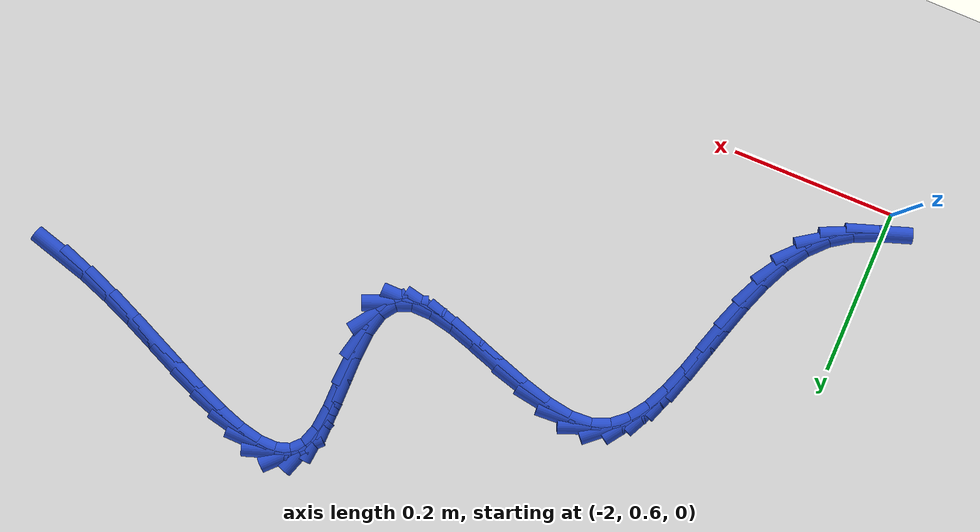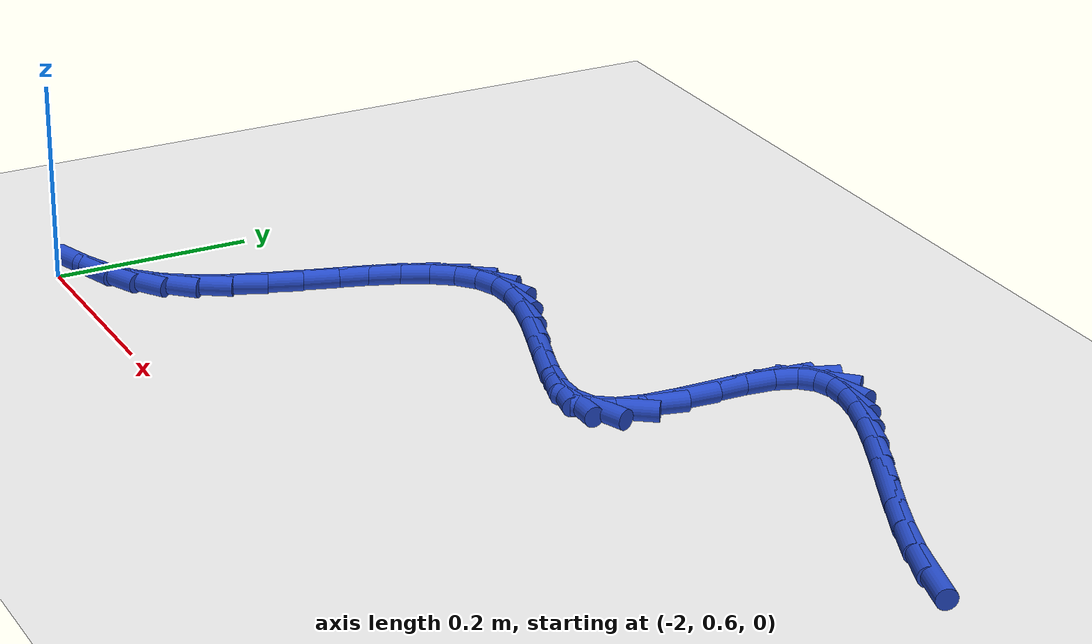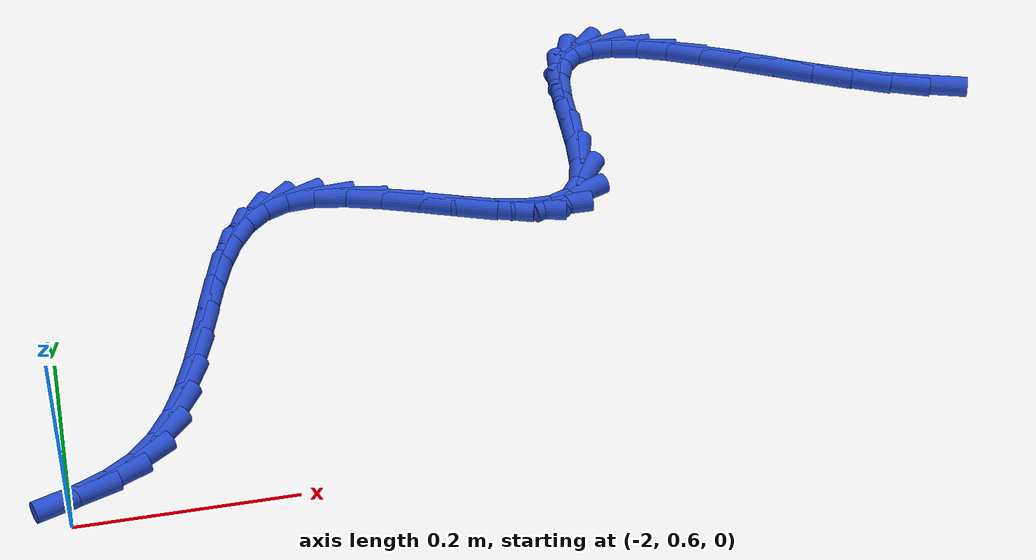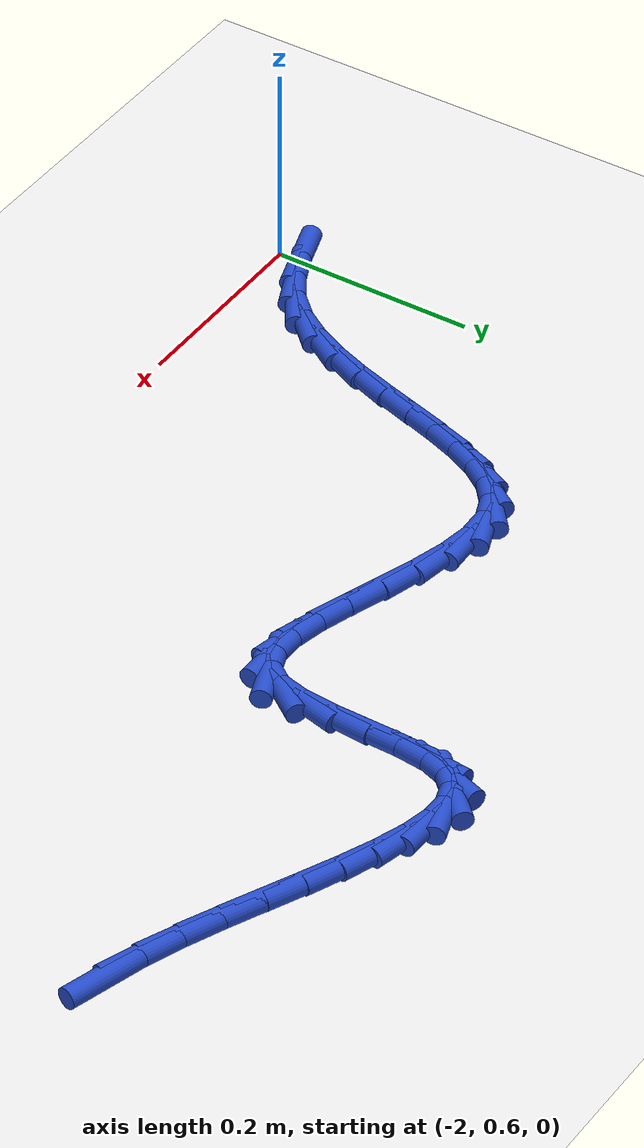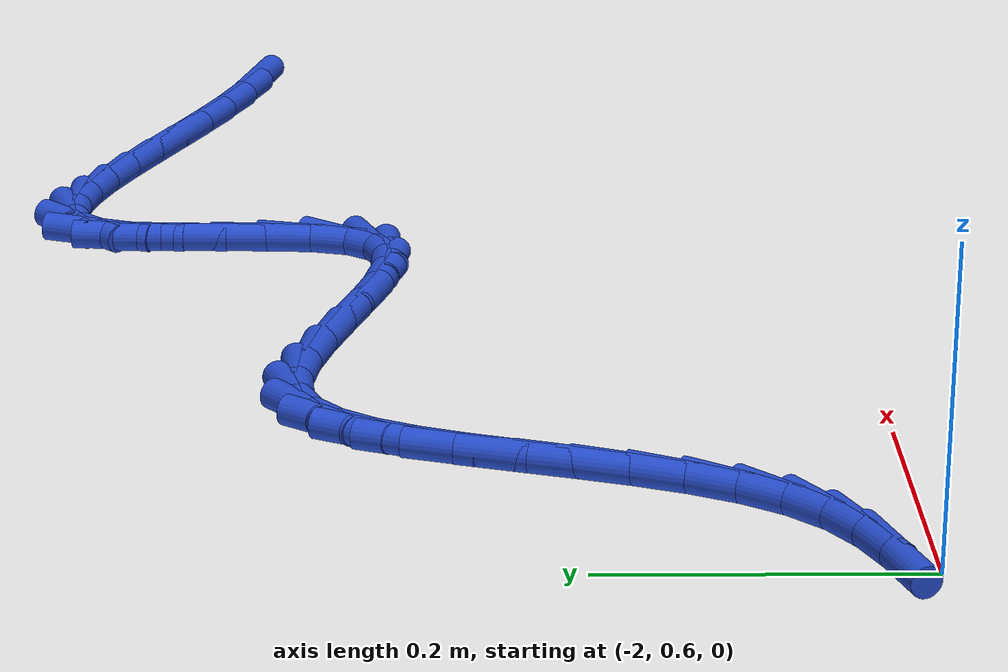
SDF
<sdf version="1.6">
 <world name="default">
  <model name="ground_plane">
   <static>1</static>
   <link name="link">
    <collision name="collision">
     <geometry><plane><normal>0 0 1</normal><size>100 100</size></plane></geometry>
     <surface><friction><ode><mu>100</mu><mu2>50</mu2></ode></friction></surface>
    </collision>
    <visual name="visual">
     <cast_shadows>0</cast_shadows>
     <geometry><plane><normal>0 0 1</normal><size>100 100</size></plane></geometry>
     <material>
      <script><uri>file://media/materials/scripts/gazebo.material</uri><name>Gazebo/WhiteGlow</name></script>
     </material>
    </visual>
   </link>
  </model>
  <model name="line">
   <link name="link_62">
    <pose>-1.1047763400410704 1.0202690215742825 0.01 0 1.57 -0.2848968509468549</pose>
    <collision name="collision">
     <geometry><cylinder><radius>0.01</radius><length>0.08</length></cylinder></geometry>
    </collision>
    <visual name="visual">
     <material>
      <script><name>Gazebo/Blue</name><uri>file://media/materials/scripts/gazebo.material</uri></script>
     </material>
     <geometry><cylinder><radius>0.01</radius><length>0.08</length></cylinder></geometry>
    </visual>
   </link>
   <link name="link_63">
    <pose>-1.140075861417262 1.0306069666060504 0.01 0 1.57 -0.3584138830336988</pose>
    <collision name="collision">
     <geometry><cylinder><radius>0.01</radius><length>0.08</length></cylinder></geometry>
    </collision>
    <visual name="visual">
     <material>
      <script><name>Gazebo/Blue</name><uri>file://media/materials/scripts/gazebo.material</uri></script>
     </material>
     <geometry><cylinder><radius>0.01</radius><length>0.08</length></cylinder></geometry>
    </visual>
   </link>
   <link name="link_64">
    <pose>-1.1762735884139017 1.0441663851568648 0.01 0 1.57 -0.4061209159079297</pose>
    <collision name="collision">
     <geometry><cylinder><radius>0.01</radius><length>0.08</length></cylinder></geometry>
    </collision>
    <visual name="visual">
     <material>
      <script><name>Gazebo/Blue</name><uri>file://media/materials/scripts/gazebo.material</uri></script>
     </material>
     <geometry><cylinder><radius>0.01</radius><length>0.08</length></cylinder></geometry>
    </visual>
   </link>
   <link name="link_65">
    <pose>-1.2127875964826167 1.0598683975800214 0.01 0 1.57 -0.43321966788153526</pose>
    <collision name="collision">
     <geometry><cylinder><radius>0.01</radius><length>0.08</length></cylinder></geometry>
    </collision>
    <visual name="visual">
     <material>
      <script><name>Gazebo/Blue</name><uri>file://media/materials/scripts/gazebo.material</uri></script>
     </material>
     <geometry><cylinder><radius>0.01</radius><length>0.08</length></cylinder></geometry>
    </visual>
   </link>
   <link name="link_66">
    <pose>-1.2490359610750312 1.0766341242288142 0.01 0 1.57 -0.44195338461217365</pose>
    <collision name="collision">
     <geometry><cylinder><radius>0.01</radius><length>0.08</length></cylinder></geometry>
    </collision>
    <visual name="visual">
     <material>
      <script><name>Gazebo/Blue</name><uri>file://media/materials/scripts/gazebo.material</uri></script>
     </material>
     <geometry><cylinder><radius>0.01</radius><length>0.08</length></cylinder></geometry>
    </visual>
   </link>
   <link name="link_67">
    <pose>-1.284436757642772 1.0933846854565388 0.01 0 1.57 -0.4318604782574528</pose>
    <collision name="collision">
     <geometry><cylinder><radius>0.01</radius><length>0.08</length></cylinder></geometry>
    </collision>
    <visual name="visual">
     <material>
      <script><name>Gazebo/Blue</name><uri>file://media/materials/scripts/gazebo.material</uri></script>
     </material>
     <geometry><cylinder><radius>0.01</radius><length>0.08</length></cylinder></geometry>
    </visual>
   </link>
   <link name="link_68">
    <pose>-1.3184080616374647 1.109041201616489 0.01 0 1.57 -0.3992344267954857</pose>
    <collision name="collision">
     <geometry><cylinder><radius>0.01</radius><length>0.08</length></cylinder></geometry>
    </collision>
    <visual name="visual">
     <material>
      <script><name>Gazebo/Blue</name><uri>file://media/materials/scripts/gazebo.material</uri></script>
     </material>
     <geometry><cylinder><radius>0.01</radius><length>0.08</length></cylinder></geometry>
    </visual>
   </link>
   <link name="link_69">
    <pose>-1.3503679485107347 1.1225247930619604 0.01 0 1.57 -0.33526337799848704</pose>
    <collision name="collision">
     <geometry><cylinder><radius>0.01</radius><length>0.08</length></cylinder></geometry>
    </collision>
    <visual name="visual">
     <material>
      <script><name>Gazebo/Blue</name><uri>file://media/materials/scripts/gazebo.material</uri></script>
     </material>
     <geometry><cylinder><radius>0.01</radius><length>0.08</length></cylinder></geometry>
    </visual>
   </link>
   <link name="link_70">
    <pose>-1.379734493714208 1.132756580146247 0.01 0 1.57 -0.22160752336483353</pose>
    <collision name="collision">
     <geometry><cylinder><radius>0.01</radius><length>0.08</length></cylinder></geometry>
    </collision>
    <visual name="visual">
     <material>
      <script><name>Gazebo/Blue</name><uri>file://media/materials/scripts/gazebo.material</uri></script>
     </material>
     <geometry><cylinder><radius>0.01</radius><length>0.08</length></cylinder></geometry>
    </visual>
   </link>
   <link name="link_71">
    <pose>-1.4059257726995102 1.138657683222644 0.01 0 1.57 -0.021906875944086232</pose>
    <collision name="collision">
     <geometry><cylinder><radius>0.01</radius><length>0.08</length></cylinder></geometry>
    </collision>
    <visual name="visual">
     <material>
      <script><name>Gazebo/Blue</name><uri>file://media/materials/scripts/gazebo.material</uri></script>
     </material>
     <geometry><cylinder><radius>0.01</radius><length>0.08</length></cylinder></geometry>
    </visual>
   </link>
   <link name="link_72">
    <pose>-1.4283598609182675 1.139149222644447 0.01 0 1.57 0.3200209922019</pose>
    <collision name="collision">
     <geometry><cylinder><radius>0.01</radius><length>0.08</length></cylinder></geometry>
    </collision>
    <visual name="visual">
     <material>
      <script><name>Gazebo/Blue</name><uri>file://media/materials/scripts/gazebo.material</uri></script>
     </material>
     <geometry><cylinder><radius>0.01</radius><length>0.08</length></cylinder></geometry>
    </visual>
   </link>
   <link name="link_73">
    <pose>-1.446454833822105 1.1331523187649497 0.01 0 1.57 0.7999940096558754</pose>
    <collision name="collision">
     <geometry><cylinder><radius>0.01</radius><length>0.08</length></cylinder></geometry>
    </collision>
    <visual name="visual">
     <material>
      <script><name>Gazebo/Blue</name><uri>file://media/materials/scripts/gazebo.material</uri></script>
     </material>
     <geometry><cylinder><radius>0.01</radius><length>0.08</length></cylinder></geometry>
    </visual>
   </link>
   <link name="link_74">
    <pose>-1.4596287668626493 1.1195880919374472 0.01 0 1.57 1.2343847895411064</pose>
    <collision name="collision">
     <geometry><cylinder><radius>0.01</radius><length>0.08</length></cylinder></geometry>
    </collision>
    <visual name="visual">
     <material>
      <script><name>Gazebo/Blue</name><uri>file://media/materials/scripts/gazebo.material</uri></script>
     </material>
     <geometry><cylinder><radius>0.01</radius><length>0.08</length></cylinder></geometry>
    </visual>
   </link>
   <link name="link_75">
    <pose>-1.467361787520432 1.0974750770579695 0.01 0 1.57 1.4653032182935788</pose>
    <collision name="collision">
     <geometry><cylinder><radius>0.01</radius><length>0.08</length></cylinder></geometry>
    </collision>
    <visual name="visual">
     <material>
      <script><name>Gazebo/Blue</name><uri>file://media/materials/scripts/gazebo.material</uri></script>
     </material>
     <geometry><cylinder><radius>0.01</radius><length>0.08</length></cylinder></geometry>
    </visual>
   </link>
   <link name="link_76">
    <pose>-1.4704874018344574 1.067956457575483 0.01 0 1.57 1.5510677818646164</pose>
    <collision name="collision">
     <geometry><cylinder><radius>0.01</radius><length>0.08</length></cylinder></geometry>
    </collision>
    <visual name="visual">
     <material>
      <script><name>Gazebo/Blue</name><uri>file://media/materials/scripts/gazebo.material</uri></script>
     </material>
     <geometry><cylinder><radius>0.01</radius><length>0.08</length></cylinder></geometry>
    </visual>
   </link>
   <link name="link_77">
    <pose>-1.4711527119213215 1.0342376115761562 0.01 0 1.57 1.559066698199405</pose>
    <collision name="collision">
     <geometry><cylinder><radius>0.01</radius><length>0.08</length></cylinder></geometry>
    </collision>
    <visual name="visual">
     <material>
      <script><name>Gazebo/Blue</name><uri>file://media/materials/scripts/gazebo.material</uri></script>
     </material>
     <geometry><cylinder><radius>0.01</radius><length>0.08</length></cylinder></geometry>
    </visual>
   </link>
   <link name="link_78">
    <pose>-1.4715589132100182 0.9996088374200881 0.01 0 1.57 1.4981058945308785</pose>
    <collision name="collision">
     <geometry><cylinder><radius>0.01</radius><length>0.08</length></cylinder></geometry>
    </collision>
    <visual name="visual">
     <material>
      <script><name>Gazebo/Blue</name><uri>file://media/materials/scripts/gazebo.material</uri></script>
     </material>
     <geometry><cylinder><radius>0.01</radius><length>0.08</length></cylinder></geometry>
    </visual>
   </link>
   <link name="link_79">
    <pose>-1.4739072011295447 0.9673604334673787 0.01 0 1.57 1.331238194424715</pose>
    <collision name="collision">
     <geometry><cylinder><radius>0.01</radius><length>0.08</length></cylinder></geometry>
    </collision>
    <visual name="visual">
     <material>
      <script><name>Gazebo/Blue</name><uri>file://media/materials/scripts/gazebo.material</uri></script>
     </material>
     <geometry><cylinder><radius>0.01</radius><length>0.08</length></cylinder></geometry>
    </visual>
   </link>
   <link name="link_80">
    <pose>-1.4803987711088948 0.9407826980781261 0.01 0 1.57 0.9439325810177034</pose>
    <collision name="collision">
     <geometry><cylinder><radius>0.01</radius><length>0.08</length></cylinder></geometry>
    </collision>
    <visual name="visual">
     <material>
      <script><name>Gazebo/Blue</name><uri>file://media/materials/scripts/gazebo.material</uri></script>
     </material>
     <geometry><cylinder><radius>0.01</radius><length>0.08</length></cylinder></geometry>
    </visual>
   </link>
   <link name="link_81">
    <pose>-1.4931985005293602 0.9231113770376638 0.01 0 1.57 0.37217758059000755</pose>
    <collision name="collision">
     <geometry><cylinder><radius>0.01</radius><length>0.08</length></cylinder></geometry>
    </collision>
    <visual name="visual">
     <material>
      <script><name>Gazebo/Blue</name><uri>file://media/materials/scripts/gazebo.material</uri></script>
     </material>
     <geometry><cylinder><radius>0.01</radius><length>0.08</length></cylinder></geometry>
    </visual>
   </link>
   <link name="link_82">
    <pose>-1.5130048611080789 0.9153795590589361 0.01 0 1.57 -0.012946831726041174</pose>
    <collision name="collision">
     <geometry><cylinder><radius>0.01</radius><length>0.08</length></cylinder></geometry>
    </collision>
    <visual name="visual">
     <material>
      <script><name>Gazebo/Blue</name><uri>file://media/materials/scripts/gazebo.material</uri></script>
     </material>
     <geometry><cylinder><radius>0.01</radius><length>0.08</length></cylinder></geometry>
    </visual>
   </link>
   <link name="link_83">
    <pose>-1.5385792439084611 0.915710684790905 0.01 0 1.57 -0.2077652539008965</pose>
    <collision name="collision">
     <geometry><cylinder><radius>0.01</radius><length>0.08</length></cylinder></geometry>
    </collision>
    <visual name="visual">
     <material>
      <script><name>Gazebo/Blue</name><uri>file://media/materials/scripts/gazebo.material</uri></script>
     </material>
     <geometry><cylinder><radius>0.01</radius><length>0.08</length></cylinder></geometry>
    </visual>
   </link>
   <link name="link_84">
    <pose>-1.5685502943904543 0.9220288005065798 0.01 0 1.57 -0.3006133910586446</pose>
    <collision name="collision">
     <geometry><cylinder><radius>0.01</radius><length>0.08</length></cylinder></geometry>
    </collision>
    <visual name="visual">
     <material>
      <script><name>Gazebo/Blue</name><uri>file://media/materials/scripts/gazebo.material</uri></script>
     </material>
     <geometry><cylinder><radius>0.01</radius><length>0.08</length></cylinder></geometry>
    </visual>
   </link>
   <link name="link_85">
    <pose>-1.6015466580140054 0.9322579524789694 0.01 0 1.57 -0.33504441937730317</pose>
    <collision name="collision">
     <geometry><cylinder><radius>0.01</radius><length>0.08</length></cylinder></geometry>
    </collision>
    <visual name="visual">
     <material>
      <script><name>Gazebo/Blue</name><uri>file://media/materials/scripts/gazebo.material</uri></script>
     </material>
     <geometry><cylinder><radius>0.01</radius><length>0.08</length></cylinder></geometry>
    </visual>
   </link>
   <link name="link_86">
    <pose>-1.6361969802390628 0.9443221869810836 0.01 0 1.57 -0.32635653932711206</pose>
    <collision name="collision">
     <geometry><cylinder><radius>0.01</radius><length>0.08</length></cylinder></geometry>
    </collision>
    <visual name="visual">
     <material>
      <script><name>Gazebo/Blue</name><uri>file://media/materials/scripts/gazebo.material</uri></script>
     </material>
     <geometry><cylinder><radius>0.01</radius><length>0.08</length></cylinder></geometry>
    </visual>
   </link>
   <link name="link_87">
    <pose>-1.6711299065255727 0.9561455502859313 0.01 0 1.57 -0.2738351190756156</pose>
    <collision name="collision">
     <geometry><cylinder><radius>0.01</radius><length>0.08</length></cylinder></geometry>
    </collision>
    <visual name="visual">
     <material>
      <script><name>Gazebo/Blue</name><uri>file://media/materials/scripts/gazebo.material</uri></script>
     </material>
     <geometry><cylinder><radius>0.01</radius><length>0.08</length></cylinder></geometry>
    </visual>
   </link>
   <link name="link_88">
    <pose>-1.7049740823334825 0.9656520886665219 0.01 0 1.57 -0.16152177263761272</pose>
    <collision name="collision">
     <geometry><cylinder><radius>0.01</radius><length>0.08</length></cylinder></geometry>
    </collision>
    <visual name="visual">
     <material>
      <script><name>Gazebo/Blue</name><uri>file://media/materials/scripts/gazebo.material</uri></script>
     </material>
     <geometry><cylinder><radius>0.01</radius><length>0.08</length></cylinder></geometry>
    </visual>
   </link>
   <link name="link_89">
    <pose>-1.7363581531227403 0.9707658483958648 0.01 0 1.57 0.04909209438832896</pose>
    <collision name="collision">
     <geometry><cylinder><radius>0.01</radius><length>0.08</length></cylinder></geometry>
    </collision>
    <visual name="visual">
     <material>
      <script><name>Gazebo/Blue</name><uri>file://media/materials/scripts/gazebo.material</uri></script>
     </material>
     <geometry><cylinder><radius>0.01</radius><length>0.08</length></cylinder></geometry>
    </visual>
   </link>
   <link name="link_90">
    <pose>-1.7639115858922636 0.9694121049764148 0.01 0 1.57 0.379406952192865</pose>
    <collision name="collision">
     <geometry><cylinder><radius>0.01</radius><length>0.08</length></cylinder></geometry>
    </collision>
    <visual name="visual">
     <material>
      <script><name>Gazebo/Blue</name><uri>file://media/materials/scripts/gazebo.material</uri></script>
     </material>
     <geometry><cylinder><radius>0.01</radius><length>0.08</length></cylinder></geometry>
    </visual>
   </link>
   <link name="link_91">
    <pose>-1.7867828830852515 0.9602927418070895 0.01 0 1.57 0.7089755176571131</pose>
    <collision name="collision">
     <geometry><cylinder><radius>0.01</radius><length>0.08</length></cylinder></geometry>
    </collision>
    <visual name="visual">
     <material>
      <script><name>Gazebo/Blue</name><uri>file://media/materials/scripts/gazebo.material</uri></script>
     </material>
     <geometry><cylinder><radius>0.01</radius><length>0.08</length></cylinder></geometry>
    </visual>
   </link>
   <link name="link_92">
    <pose>-1.8055274019825593 0.9442146518543333 0.01 0 1.57 0.9571481072202822</pose>
    <collision name="collision">
     <geometry><cylinder><radius>0.01</radius><length>0.08</length></cylinder></geometry>
    </collision>
    <visual name="visual">
     <material>
      <script><name>Gazebo/Blue</name><uri>file://media/materials/scripts/gazebo.material</uri></script>
     </material>
     <geometry><cylinder><radius>0.01</radius><length>0.08</length></cylinder></geometry>
    </visual>
   </link>
   <link name="link_93">
    <pose>-1.8209365575863348 0.9223379299562459 0.01 0 1.57 1.1190585536415731</pose>
    <collision name="collision">
     <geometry><cylinder><radius>0.01</radius><length>0.08</length></cylinder></geometry>
    </collision>
    <visual name="visual">
     <material>
      <script><name>Gazebo/Blue</name><uri>file://media/materials/scripts/gazebo.material</uri></script>
     </material>
     <geometry><cylinder><radius>0.01</radius><length>0.08</length></cylinder></geometry>
    </visual>
   </link>
   <link name="link_94">
    <pose>-1.8338017648987246 0.8958226709509288 0.01 0 1.57 1.2159764610722077</pose>
    <collision name="collision">
     <geometry><cylinder><radius>0.01</radius><length>0.08</length></cylinder></geometry>
    </collision>
    <visual name="visual">
     <material>
      <script><name>Gazebo/Blue</name><uri>file://media/materials/scripts/gazebo.material</uri></script>
     </material>
     <geometry><cylinder><radius>0.01</radius><length>0.08</length></cylinder></geometry>
    </visual>
   </link>
   <link name="link_95">
    <pose>-1.8449144389218761 0.8658289696764825 0.01 0 1.57 1.2663885227415637</pose>
    <collision name="collision">
     <geometry><cylinder><radius>0.01</radius><length>0.08</length></cylinder></geometry>
    </collision>
    <visual name="visual">
     <material>
      <script><name>Gazebo/Blue</name><uri>file://media/materials/scripts/gazebo.material</uri></script>
     </material>
     <geometry><cylinder><radius>0.01</radius><length>0.08</length></cylinder></geometry>
    </visual>
   </link>
   <link name="link_96">
    <pose>-1.8550659946579375 0.8335169209710076 0.01 0 1.57 1.280964052227703</pose>
    <collision name="collision">
     <geometry><cylinder><radius>0.01</radius><length>0.08</length></cylinder></geometry>
    </collision>
    <visual name="visual">
     <material>
      <script><name>Gazebo/Blue</name><uri>file://media/materials/scripts/gazebo.material</uri></script>
     </material>
     <geometry><cylinder><radius>0.01</radius><length>0.08</length></cylinder></geometry>
    </visual>
   </link>
   <link name="link_97">
    <pose>-1.8650478471090561 0.8000466196726053 0.01 0 1.57 1.26397829324062</pose>
    <collision name="collision">
     <geometry><cylinder><radius>0.01</radius><length>0.08</length></cylinder></geometry>
    </collision>
    <visual name="visual">
     <material>
      <script><name>Gazebo/Blue</name><uri>file://media/materials/scripts/gazebo.material</uri></script>
     </material>
     <geometry><cylinder><radius>0.01</radius><length>0.08</length></cylinder></geometry>
    </visual>
   </link>
   <link name="link_98">
    <pose>-1.8756514112773788 0.7665781606193758 0.01 0 1.57 1.2146946919770725</pose>
    <collision name="collision">
     <geometry><cylinder><radius>0.01</radius><length>0.08</length></cylinder></geometry>
    </collision>
    <visual name="visual">
     <material>
      <script><name>Gazebo/Blue</name><uri>file://media/materials/scripts/gazebo.material</uri></script>
     </material>
     <geometry><cylinder><radius>0.01</radius><length>0.08</length></cylinder></geometry>
    </visual>
   </link>
   <link name="link_99">
    <pose>-1.8876681021650534 0.7342716386494201 0.01 0 1.57 1.127930472920715</pose>
    <collision name="collision">
     <geometry><cylinder><radius>0.01</radius><length>0.08</length></cylinder></geometry>
    </collision>
    <visual name="visual">
     <material>
      <script><name>Gazebo/Blue</name><uri>file://media/materials/scripts/gazebo.material</uri></script>
     </material>
     <geometry><cylinder><radius>0.01</radius><length>0.08</length></cylinder></geometry>
    </visual>
   </link>
   <link name="link_100">
    <pose>-1.9018893347742272 0.7042871486008391 0.01 0 1.57 0.994669074577345</pose>
    <collision name="collision">
     <geometry><cylinder><radius>0.01</radius><length>0.08</length></cylinder></geometry>
    </collision>
    <visual name="visual">
     <material>
      <script><name>Gazebo/Blue</name><uri>file://media/materials/scripts/gazebo.material</uri></script>
     </material>
     <geometry><cylinder><radius>0.01</radius><length>0.08</length></cylinder></geometry>
    </visual>
   </link>
   <link name="link_101">
    <pose>-1.9191065241070477 0.6777847853117335 0.01 0 1.57 0.8053790883485517</pose>
    <collision name="collision">
     <geometry><cylinder><radius>0.01</radius><length>0.08</length></cylinder></geometry>
    </collision>
    <visual name="visual">
     <material>
      <script><name>Gazebo/Blue</name><uri>file://media/materials/scripts/gazebo.material</uri></script>
     </material>
     <geometry><cylinder><radius>0.01</radius><length>0.08</length></cylinder></geometry>
    </visual>
   </link>
   <link name="link_102">
    <pose>-1.9401106272305493 0.6559240898674172 0.01 0 1.57 0.5857658630286701</pose>
    <collision name="collision">
     <geometry><cylinder><radius>0.01</radius><length>0.08</length></cylinder></geometry>
    </collision>
    <visual name="visual">
     <material>
      <script><name>Gazebo/Blue</name><uri>file://media/materials/scripts/gazebo.material</uri></script>
     </material>
     <geometry><cylinder><radius>0.01</radius><length>0.08</length></cylinder></geometry>
    </visual>
   </link>
   <link name="link_103">
    <pose>-1.9652052597087564 0.6392752912265658 0.01 0 1.57 0.4211035089016582</pose>
    <collision name="collision">
     <geometry><cylinder><radius>0.01</radius><length>0.08</length></cylinder></geometry>
    </collision>
    <visual name="visual">
     <material>
      <script><name>Gazebo/Blue</name><uri>file://media/materials/scripts/gazebo.material</uri></script>
     </material>
     <geometry><cylinder><radius>0.01</radius><length>0.08</length></cylinder></geometry>
    </visual>
   </link>
   <link name="link_104">
    <pose>-1.9932812040819767 0.6267001662077243 0.01 0 1.57 0.3232556102576815</pose>
    <collision name="collision">
     <geometry><cylinder><radius>0.01</radius><length>0.08</length></cylinder></geometry>
    </collision>
    <visual name="visual">
     <material>
      <script><name>Gazebo/Blue</name><uri>file://media/materials/scripts/gazebo.material</uri></script>
     </material>
     <geometry><cylinder><radius>0.01</radius><length>0.08</length></cylinder></geometry>
    </visual>
   </link>
  </model>
 </world>
</sdf>
